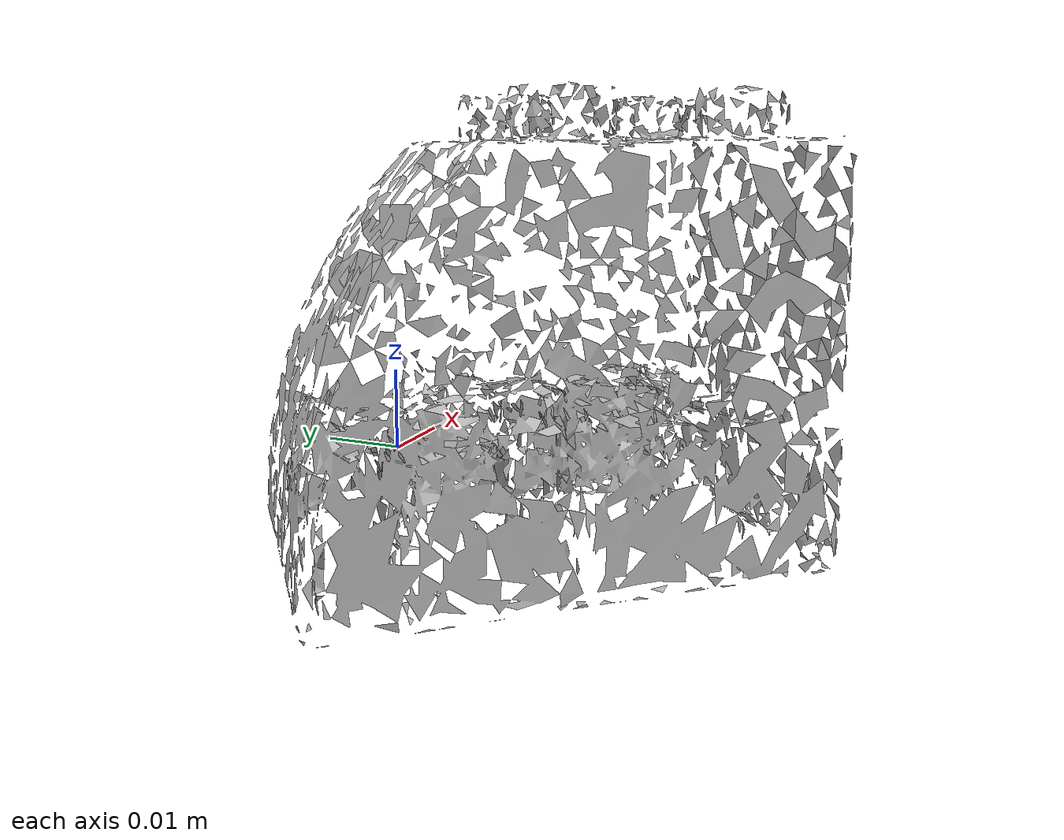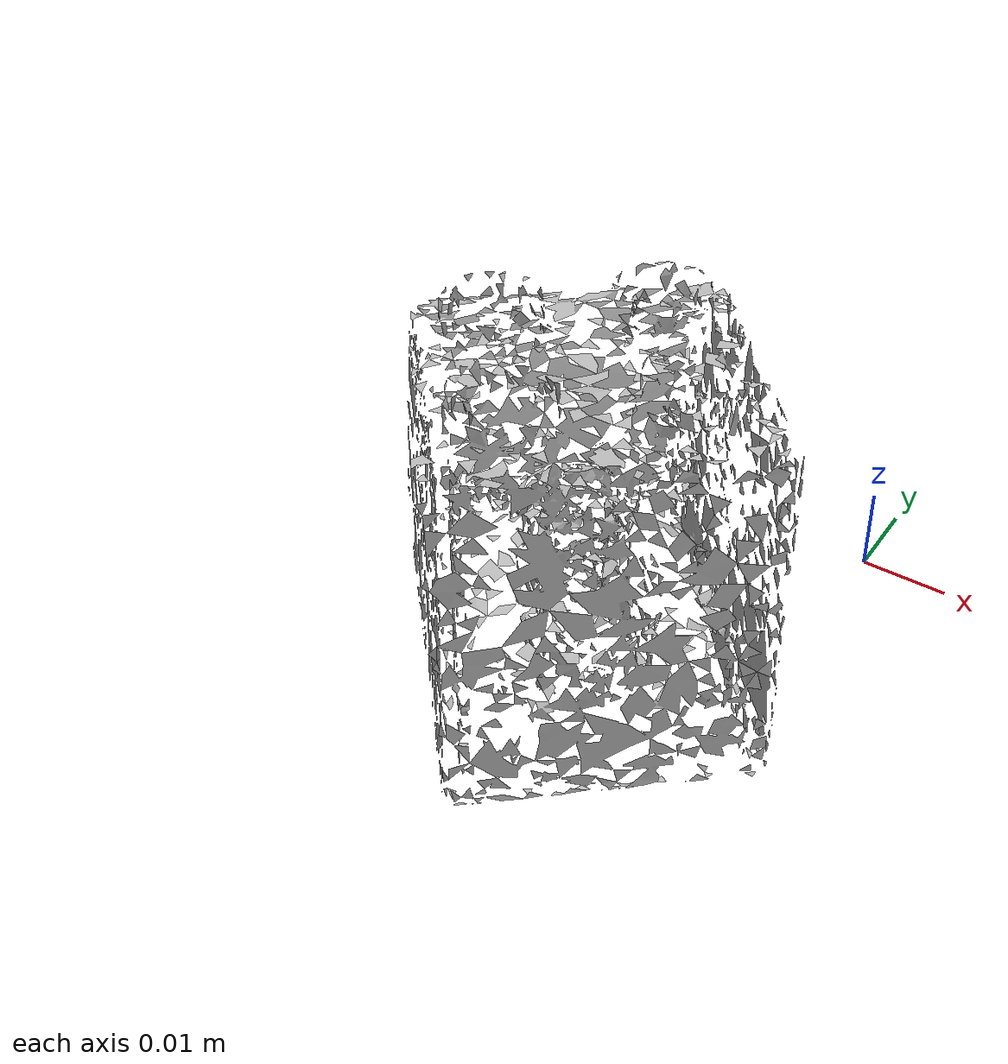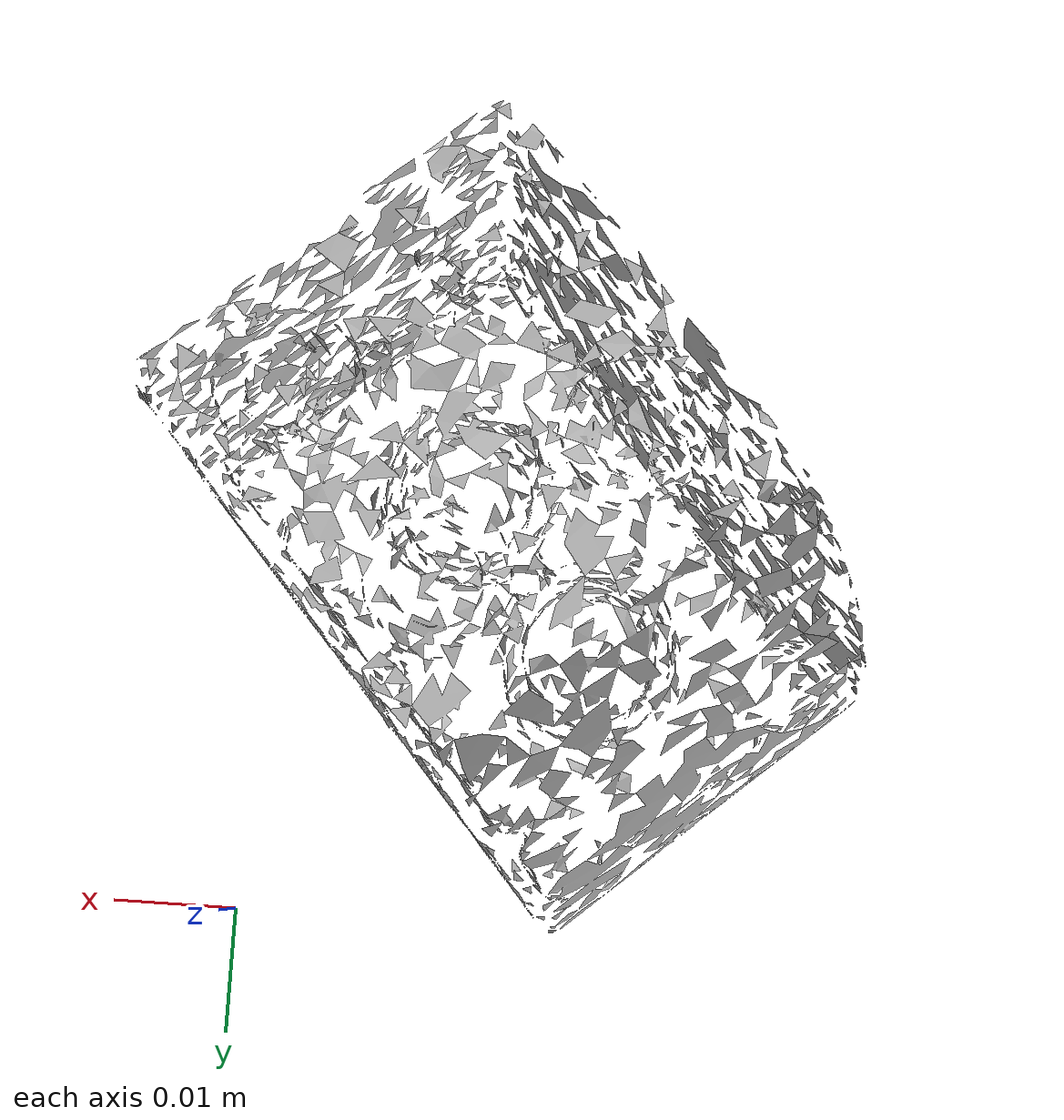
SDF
<?xml version='1.0'?>
<sdf version="1.4">
  <model name="d_lego_duplo">
    <static>false</static>
    <link name="link">
      <inertial>
        <pose>-0.02022260894778108 -0.029911376763957505 0.022775232245389507 -0.2433591376533694 1.3050776420007137 -1.113773490069745</pose>
        <mass>3.797934400201833e-05</mass>
        <inertia>
          <ixx>9.86765296317061e-09</ixx>
          <ixy>4.776148251755483e-25</ixy>
          <ixz>-9.099737316258397e-25</ixz>
          <iyy>9.6121651138702e-09</iyy>
          <iyz>1.5498190191524435e-24</iyz>
          <izz>6.6584957743664926e-09</izz>
        </inertia>
      </inertial>
      <collision name="collision">
        <geometry>
          <mesh>
            <!-- Use a downsampled mesh for collisions -->
            <uri>model://073-d_lego_duplo/downsampled.obj</uri>
	        </mesh>
        </geometry>
        <surface>
      </surface>
      </collision>
      <visual name="visual">
        <geometry>
          <mesh>
            <uri>model://073-d_lego_duplo/google_16k/textured.obj</uri>
	        </mesh>
        </geometry>
        <material>
          <script>
            <uri>model://073-d_lego_duplo/d_lego_duplo.material</uri>
            <name>d_lego_duplo</name>
          </script>
        </material>
      </visual>
    </link>
  </model>
</sdf>
